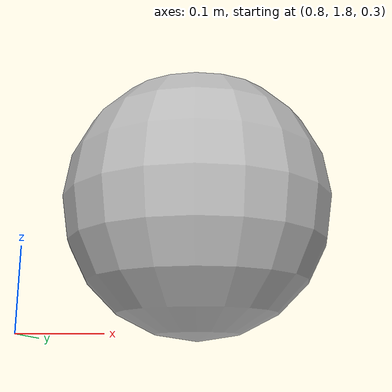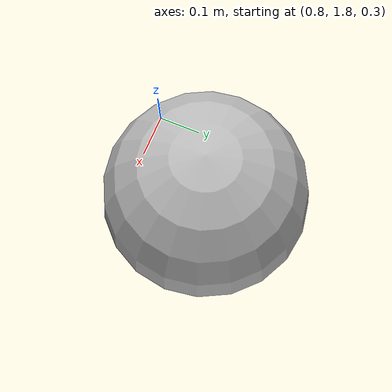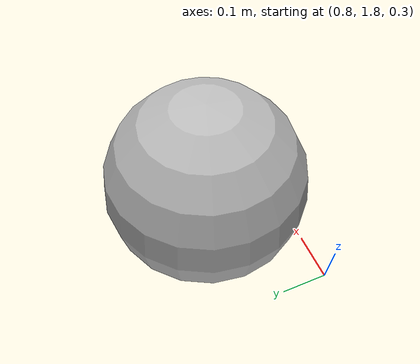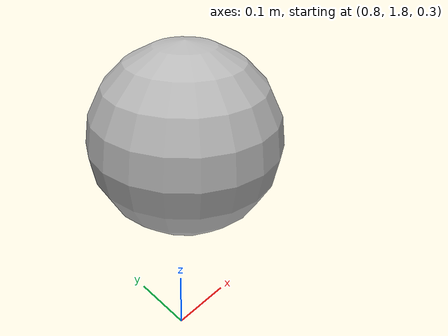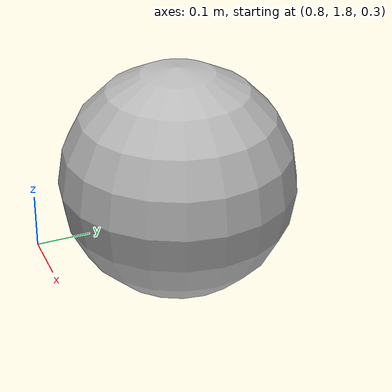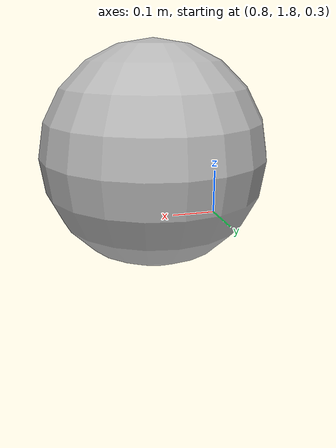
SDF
<?xml version="1.0" ?>
<sdf version="1.7">
  <model name="random_sphere">
    <pose>1 2 0.5 0 0 0</pose>
    <link name="link">
      <collision name="collision">
        <geometry>
          <sphere>
            <radius>0.2</radius>
          </sphere>
        </geometry>
      </collision>
      <visual name="visual">
        <geometry>
          <sphere>
            <radius>0.2</radius>
          </sphere>
        </geometry>
      </visual>
    </link>
  </model>
</sdf>
